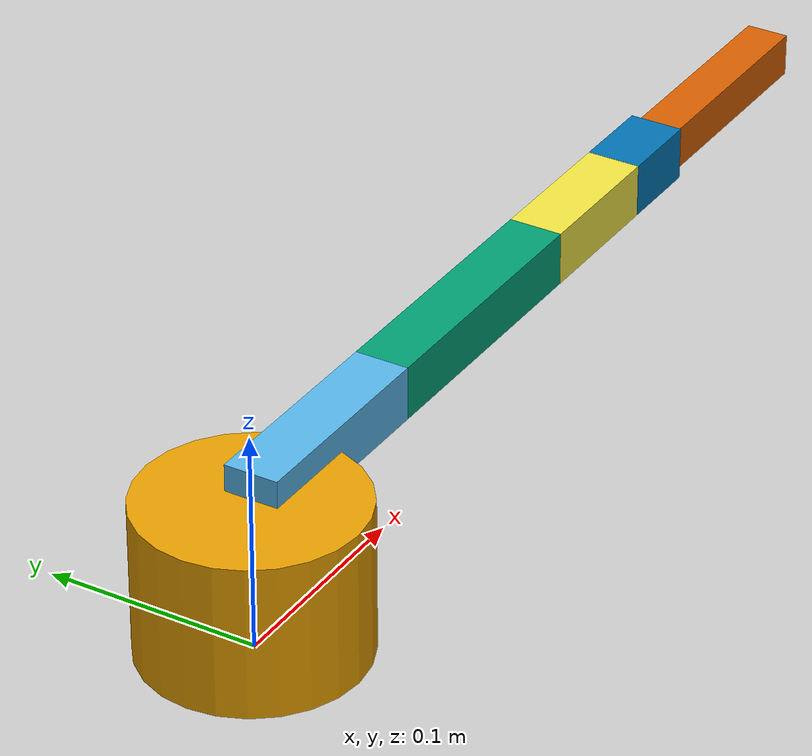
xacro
<robot xmlns:xacro="http://www.ros.org/wiki/xacro" name="my_robot_arm">

  <!-- Dimensions from assignment                                -->
  <!-- Base = 7.1 cm                                             -->
  <!-- L1   = 10 cm                                              -->
  <!-- L2   = 12.8 cm                                            -->
  <!-- L3   = 7 cm                                               -->
  <!-- Gripper / end-effector = 11 cm                            -->

  <xacro:property name="base_height" value="0.071"/>
  <xacro:property name="base_radius" value="0.05"/>

  <xacro:property name="L1" value="0.10"/>
  <xacro:property name="L2" value="0.128"/>
  <xacro:property name="L3" value="0.07"/>
  <xacro:property name="gripper_length" value="0.11"/>

  <xacro:property name="link_width" value="0.025"/>
  <xacro:property name="link_height" value="0.025"/>

  <!-- BASE LINK                                                 -->
  <link name="base_link">
    <visual>
      <origin xyz="0 0 ${base_height / 2}" rpy="0 0 0"/>
      <geometry>
        <cylinder radius="${base_radius}" length="${base_height}"/>
      </geometry>
    </visual>
    <collision>
      <origin xyz="0 0 ${base_height / 2}" rpy="0 0 0"/>
      <geometry>
        <cylinder radius="${base_radius}" length="${base_height}"/>
      </geometry>
    </collision>
    <inertial>
      <origin xyz="0 0 ${base_height / 2}" rpy="0 0 0"/>
      <mass value="1.0"/>
      <inertia ixx="0.001" ixy="0.0" ixz="0.0" iyy="0.001" iyz="0.0" izz="0.001"/>
    </inertial>
  </link>

  <!-- JOINT 1 - BASE ROTATION                                  -->
  <joint name="joint1" type="revolute">
    <parent link="base_link"/>
    <child link="L1_link"/>
    <origin xyz="0 0 ${base_height}" rpy="0 0 0"/>
    <axis xyz="0 0 1"/>
    <limit lower="-3.14159" upper="3.14159" effort="10" velocity="2.0"/>
  </joint>

  <!-- LINK 1                                                    -->
  <link name="L1_link">
    <visual>
      <origin xyz="${L1 / 2} 0 0" rpy="0 0 0"/>
      <geometry>
        <box size="${L1} ${link_width} ${link_height}"/>
      </geometry>
    </visual>
    <collision>
      <origin xyz="${L1 / 2} 0 0" rpy="0 0 0"/>
      <geometry>
        <box size="${L1} ${link_width} ${link_height}"/>
      </geometry>
    </collision>
    <inertial>
      <origin xyz="${L1 / 2} 0 0" rpy="0 0 0"/>
      <mass value="0.5"/>
      <inertia ixx="0.0001" ixy="0.0" ixz="0.0" iyy="0.0005" iyz="0.0" izz="0.0005"/>
    </inertial>
  </link>

  <!-- JOINT 2                                                   -->
  <joint name="joint2" type="revolute">
    <parent link="L1_link"/>
    <child link="L2_link"/>
    <origin xyz="${L1} 0 0" rpy="0 0 0"/>
    <axis xyz="0 1 0"/>
    <limit lower="-3.14159" upper="3.14159" effort="10" velocity="2.0"/>
  </joint>

  <!-- LINK 2                                                    -->
  <link name="L2_link">
    <visual>
      <origin xyz="${L2 / 2} 0 0" rpy="0 0 0"/>
      <geometry>
        <box size="${L2} ${link_width} ${link_height}"/>
      </geometry>
    </visual>
    <collision>
      <origin xyz="${L2 / 2} 0 0" rpy="0 0 0"/>
      <geometry>
        <box size="${L2} ${link_width} ${link_height}"/>
      </geometry>
    </collision>
    <inertial>
      <origin xyz="${L2 / 2} 0 0" rpy="0 0 0"/>
      <mass value="0.5"/>
      <inertia ixx="0.0001" ixy="0.0" ixz="0.0" iyy="0.0007" iyz="0.0" izz="0.0007"/>
    </inertial>
  </link>

  <!-- JOINT 3                                                   -->
  <joint name="joint3" type="revolute">
    <parent link="L2_link"/>
    <child link="L3_link"/>
    <origin xyz="${L2} 0 0" rpy="0 0 0"/>
    <axis xyz="0 1 0"/>
    <limit lower="-3.14159" upper="3.14159" effort="10" velocity="2.0"/>
  </joint>

  <!-- LINK 3                                                    -->
  <link name="L3_link">
    <visual>
      <origin xyz="${L3 / 2} 0 0" rpy="0 0 0"/>
      <geometry>
        <box size="${L3} ${link_width} ${link_height}"/>
      </geometry>
    </visual>
    <collision>
      <origin xyz="${L3 / 2} 0 0" rpy="0 0 0"/>
      <geometry>
        <box size="${L3} ${link_width} ${link_height}"/>
      </geometry>
    </collision>
    <inertial>
      <origin xyz="${L3 / 2} 0 0" rpy="0 0 0"/>
      <mass value="0.3"/>
      <inertia ixx="0.00005" ixy="0.0" ixz="0.0" iyy="0.0002" iyz="0.0" izz="0.0002"/>
    </inertial>
  </link>

  <!-- JOINT 4 - WRIST / L3 TO END EFFECTOR                      -->
  <joint name="joint4" type="revolute">
    <parent link="L3_link"/>
    <child link="end_effector"/>
    <origin xyz="${L3} 0 0" rpy="0 0 0"/>
    <axis xyz="0 1 0"/>
    <limit lower="-3.14159" upper="3.14159" effort="10" velocity="2.0"/>
  </joint>

  <link name="end_effector">
    <visual>
      <origin xyz="0.02 0 0" rpy="0 0 0"/>
      <geometry>
        <box size="0.04 ${link_width} ${link_height}"/>
      </geometry>
    </visual>
    <collision>
      <origin xyz="0.02 0 0" rpy="0 0 0"/>
      <geometry>
        <box size="0.04 ${link_width} ${link_height}"/>
      </geometry>
    </collision>
    <inertial>
      <origin xyz="0.02 0 0" rpy="0 0 0"/>
      <mass value="0.1"/>
      <inertia ixx="0.00003" ixy="0.0" ixz="0.0" iyy="0.0001" iyz="0.0" izz="0.0001"/>
    </inertial>
  </link>

  <!-- JOINT 5 - GRIPPER OPEN/CLOSE                              -->
  <joint name="joint5" type="revolute">
    <parent link="end_effector"/>
    <child link="gripper_link"/>
    <origin xyz="0.04 0 0" rpy="0 0 0"/>
    <axis xyz="0 0 1"/>
    <limit lower="-1.57" upper="1.57" effort="10.0" velocity="1.0"/>
  </joint>

  <link name="gripper_link">
    <visual>
      <origin xyz="${gripper_length / 2} 0 0" rpy="0 0 0"/>
      <geometry>
        <box size="${gripper_length} 0.02 0.02"/>
      </geometry>
    </visual>
    <collision>
      <origin xyz="${gripper_length / 2} 0 0" rpy="0 0 0"/>
      <geometry>
        <box size="${gripper_length} 0.02 0.02"/>
      </geometry>
    </collision>
    <inertial>
      <mass value="0.05"/>
      <origin xyz="${gripper_length / 2} 0 0" rpy="0 0 0"/>
      <inertia ixx="0.0001" ixy="0.0" ixz="0.0" iyy="0.0001" iyz="0.0" izz="0.0001"/>
    </inertial>
  </link>

  <xacro:include filename="$(find my_robot_arm)/urdf/my_robot_arm.ros2_control.xacro"/>
</robot>
